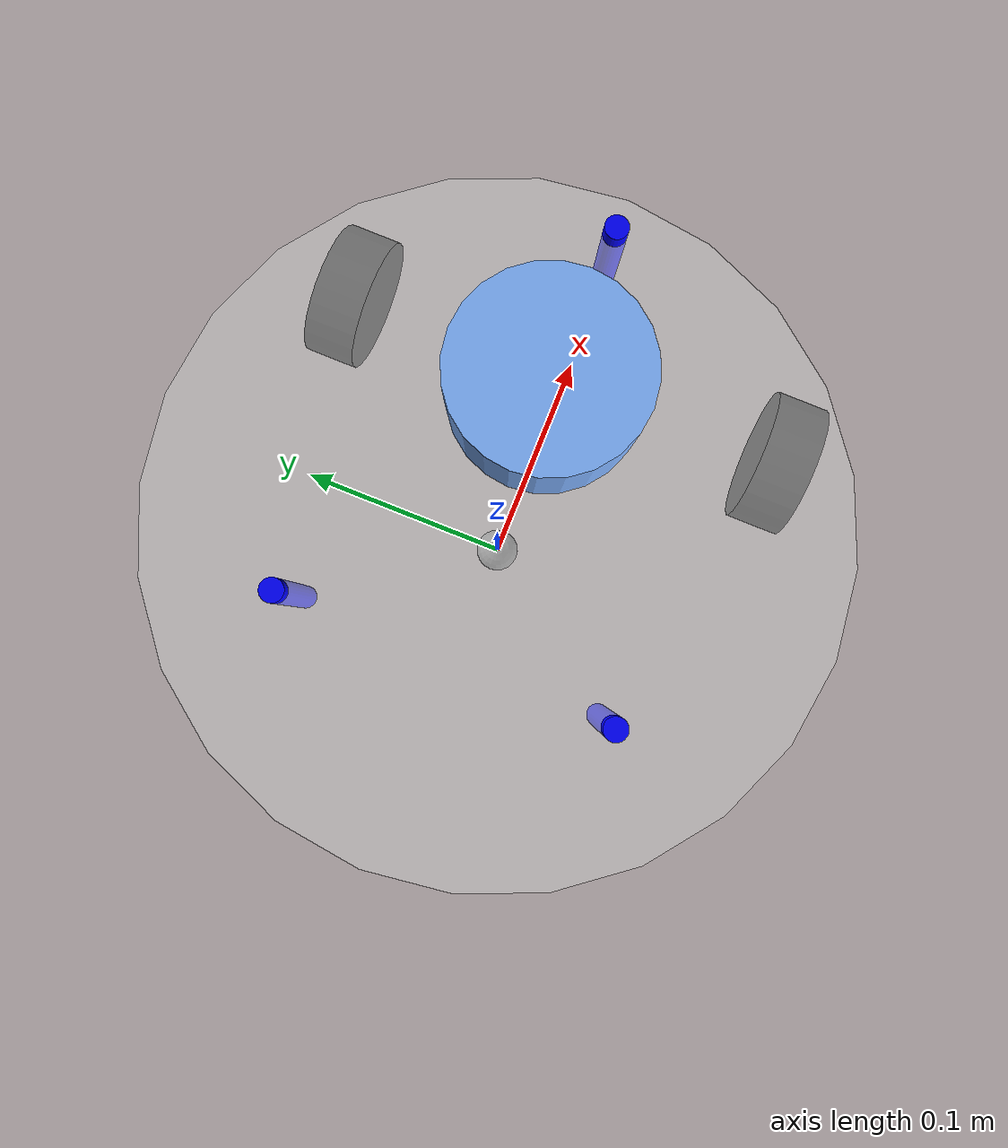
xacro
<?xml version="1.0"?>
<robot xmlns:xacro="http://www.ros.org/wiki/xacro" name="vibe_robot">

  <!-- Parameters for easy customization -->
  <xacro:property name="plate_diameter" value="0.280"/>  <!-- 280mm -->
  <xacro:property name="plate_thickness" value="0.003"/>  <!-- 3mm acrylic -->
  <xacro:property name="plate_radius" value="${plate_diameter/2}"/>

  <xacro:property name="bottom_plate_height" value="0.065"/>  <!-- 65mm from base_footprint -->
  <xacro:property name="top_plate_height" value="0.125"/>  <!-- 125mm from base_footprint -->

  <xacro:property name="base_link_x" value="0.085"/>  <!-- 85mm -->
  <xacro:property name="base_link_y" value="0.0"/>
  <xacro:property name="base_link_z" value="0.065"/>  <!-- 65mm -->

  <xacro:property name="support_post_radius" value="0.005"/>  <!-- 5mm radius -->
  <xacro:property name="support_post_bottom" value="0.055"/>  <!-- 10mm below bottom plate -->
  <xacro:property name="support_post_top" value="0.135"/>  <!-- 10mm above top plate -->
  <xacro:property name="support_post_height" value="${support_post_top - support_post_bottom}"/>

  <xacro:property name="wheel_radius" value="0.03125"/>  <!-- 62.5mm diameter / 2 -->
  <xacro:property name="wheel_width" value="0.024"/>  <!-- 24mm -->
  <xacro:property name="wheel_separation" value="0.215"/>  <!-- 215mm wheelbase -->

  <!-- Colors -->
  <material name="clear_acrylic">
    <color rgba="0.9 0.9 0.9 0.5"/>
  </material>

  <material name="blue">
    <color rgba="0.0 0.0 1.0 1.0"/>
  </material>

  <material name="light_blue">
    <color rgba="0.5 0.7 1.0 1.0"/>
  </material>

  <material name="grey">
    <color rgba="0.5 0.5 0.5 1.0"/>
  </material>

  <material name="red">
    <color rgba="1.0 0.0 0.0 1.0"/>
  </material>

  <material name="black">
    <color rgba="0.1 0.1 0.1 1.0"/>
  </material>

  <!-- Base footprint (ground projection) -->
  <link name="base_footprint">
    <visual>
      <geometry>
        <sphere radius="0.01"/>  <!-- 1cm sphere -->
      </geometry>
      <material name="grey"/>
    </visual>
  </link>

  <!-- Base link (main robot body, rotation center) -->
  <link name="base_link">
    <visual>
      <geometry>
        <box size="0.05 0.05 0.05"/>
      </geometry>
      <material name="grey"/>
    </visual>
    <collision>
      <geometry>
        <box size="0.05 0.05 0.05"/>
      </geometry>
    </collision>
    <inertial>
      <mass value="1.0"/>
      <inertia ixx="0.001" ixy="0.0" ixz="0.0" iyy="0.001" iyz="0.0" izz="0.001"/>
    </inertial>
  </link>

  <joint name="base_footprint_to_base_link" type="fixed">
    <parent link="base_footprint"/>
    <child link="base_link"/>
    <origin xyz="${base_link_x} ${base_link_y} ${base_link_z}" rpy="0 0 0"/>
  </joint>

  <!-- Bottom plate (clear acrylic) -->
  <link name="bottom_plate">
    <visual>
      <geometry>
        <cylinder radius="${plate_radius}" length="${plate_thickness}"/>
      </geometry>
      <material name="clear_acrylic"/>
    </visual>
    <collision>
      <geometry>
        <cylinder radius="${plate_radius}" length="${plate_thickness}"/>
      </geometry>
    </collision>
    <inertial>
      <mass value="0.5"/>
      <inertia ixx="0.005" ixy="0.0" ixz="0.0" iyy="0.005" iyz="0.0" izz="0.01"/>
    </inertial>
  </link>

  <joint name="base_footprint_to_bottom_plate" type="fixed">
    <parent link="base_footprint"/>
    <child link="bottom_plate"/>
    <origin xyz="0 0 ${bottom_plate_height}" rpy="0 0 0"/>
  </joint>

  <!-- Top plate (clear acrylic) -->
  <link name="top_plate">
    <visual>
      <geometry>
        <cylinder radius="${plate_radius}" length="${plate_thickness}"/>
      </geometry>
      <material name="clear_acrylic"/>
    </visual>
    <collision>
      <geometry>
        <cylinder radius="${plate_radius}" length="${plate_thickness}"/>
      </geometry>
    </collision>
    <inertial>
      <mass value="0.5"/>
      <inertia ixx="0.005" ixy="0.0" ixz="0.0" iyy="0.005" iyz="0.0" izz="0.01"/>
    </inertial>
  </link>

  <joint name="base_footprint_to_top_plate" type="fixed">
    <parent link="base_footprint"/>
    <child link="top_plate"/>
    <origin xyz="0 0 ${top_plate_height}" rpy="0 0 0"/>
  </joint>

  <!-- Support Post 1 (blue) -->
  <link name="support_post_1">
    <visual>
      <geometry>
        <cylinder radius="${support_post_radius}" length="${support_post_height}"/>
      </geometry>
      <material name="blue"/>
    </visual>
    <collision>
      <geometry>
        <cylinder radius="${support_post_radius}" length="${support_post_height}"/>
      </geometry>
    </collision>
    <inertial>
      <mass value="0.05"/>
      <inertia ixx="0.0001" ixy="0.0" ixz="0.0" iyy="0.0001" iyz="0.0" izz="0.00001"/>
    </inertial>
  </link>

  <joint name="base_link_to_support_post_1" type="fixed">
    <parent link="base_link"/>
    <child link="support_post_1"/>
    <origin xyz="0.040 0 ${(support_post_bottom + support_post_top)/2 - base_link_z}" rpy="0 0 0"/>
  </joint>

  <!-- Support Post 2 (blue) -->
  <link name="support_post_2">
    <visual>
      <geometry>
        <cylinder radius="${support_post_radius}" length="${support_post_height}"/>
      </geometry>
      <material name="blue"/>
    </visual>
    <collision>
      <geometry>
        <cylinder radius="${support_post_radius}" length="${support_post_height}"/>
      </geometry>
    </collision>
    <inertial>
      <mass value="0.05"/>
      <inertia ixx="0.0001" ixy="0.0" ixz="0.0" iyy="0.0001" iyz="0.0" izz="0.00001"/>
    </inertial>
  </link>

  <joint name="support_post_1_to_support_post_2" type="fixed">
    <parent link="support_post_1"/>
    <child link="support_post_2"/>
    <origin xyz="-0.180 0.070 0" rpy="0 0 0"/>
  </joint>

  <!-- Support Post 3 (blue) -->
  <link name="support_post_3">
    <visual>
      <geometry>
        <cylinder radius="${support_post_radius}" length="${support_post_height}"/>
      </geometry>
      <material name="blue"/>
    </visual>
    <collision>
      <geometry>
        <cylinder radius="${support_post_radius}" length="${support_post_height}"/>
      </geometry>
    </collision>
    <inertial>
      <mass value="0.05"/>
      <inertia ixx="0.0001" ixy="0.0" ixz="0.0" iyy="0.0001" iyz="0.0" izz="0.00001"/>
    </inertial>
  </link>

  <joint name="support_post_1_to_support_post_3" type="fixed">
    <parent link="support_post_1"/>
    <child link="support_post_3"/>
    <origin xyz="-0.180 -0.070 0" rpy="0 0 0"/>
  </joint>

  <!-- Left Wheel -->
  <link name="left_wheel">
    <visual>
      <geometry>
        <cylinder radius="${wheel_radius}" length="${wheel_width}"/>
      </geometry>
      <origin xyz="0 0 0" rpy="${pi/2} 0 0"/>
      <material name="black"/>
    </visual>
    <collision>
      <geometry>
        <cylinder radius="${wheel_radius}" length="${wheel_width}"/>
      </geometry>
      <origin xyz="0 0 0" rpy="${pi/2} 0 0"/>
    </collision>
    <inertial>
      <mass value="0.2"/>
      <origin xyz="0 0 0" rpy="${pi/2} 0 0"/>
      <inertia ixx="0.0001" ixy="0.0" ixz="0.0" iyy="0.0001" iyz="0.0" izz="0.0001"/>
    </inertial>
  </link>

  <joint name="left_wheel_joint" type="continuous">
    <parent link="base_link"/>
    <child link="left_wheel"/>
    <origin xyz="0 ${wheel_separation/2} ${wheel_radius - base_link_z}" rpy="0 0 0"/>
    <axis xyz="0 1 0"/>
  </joint>

  <!-- Right Wheel -->
  <link name="right_wheel">
    <visual>
      <geometry>
        <cylinder radius="${wheel_radius}" length="${wheel_width}"/>
      </geometry>
      <origin xyz="0 0 0" rpy="${pi/2} 0 0"/>
      <material name="black"/>
    </visual>
    <collision>
      <geometry>
        <cylinder radius="${wheel_radius}" length="${wheel_width}"/>
      </geometry>
      <origin xyz="0 0 0" rpy="${pi/2} 0 0"/>
    </collision>
    <inertial>
      <mass value="0.2"/>
      <origin xyz="0 0 0" rpy="${pi/2} 0 0"/>
      <inertia ixx="0.0001" ixy="0.0" ixz="0.0" iyy="0.0001" iyz="0.0" izz="0.0001"/>
    </inertial>
  </link>

  <joint name="right_wheel_joint" type="continuous">
    <parent link="base_link"/>
    <child link="right_wheel"/>
    <origin xyz="0 ${-wheel_separation/2} ${wheel_radius - base_link_z}" rpy="0 0 0"/>
    <axis xyz="0 1 0"/>
  </joint>

  <!-- Lidar (light blue) -->
  <link name="lidar">
    <visual>
      <geometry>
        <cylinder radius="0.035" length="0.04"/>
      </geometry>
      <material name="light_blue"/>
    </visual>
    <collision>
      <geometry>
        <cylinder radius="0.035" length="0.04"/>
      </geometry>
    </collision>
    <inertial>
      <mass value="0.15"/>
      <inertia ixx="0.0001" ixy="0.0" ixz="0.0" iyy="0.0001" iyz="0.0" izz="0.0001"/>
    </inertial>
  </link>

  <joint name="base_link_to_lidar" type="fixed">
    <parent link="base_link"/>
    <child link="lidar"/>
    <origin xyz="-0.040 0 0.130" rpy="0 0 0"/>
  </joint>

  <!-- IMU (grey) -->
  <link name="imu">
    <visual>
      <geometry>
        <box size="0.03 0.03 0.01"/>
      </geometry>
      <material name="grey"/>
    </visual>
    <collision>
      <geometry>
        <box size="0.03 0.03 0.01"/>
      </geometry>
    </collision>
    <inertial>
      <mass value="0.02"/>
      <inertia ixx="0.00001" ixy="0.0" ixz="0.0" iyy="0.00001" iyz="0.0" izz="0.00001"/>
    </inertial>
  </link>

  <joint name="base_link_to_imu" type="fixed">
    <parent link="base_link"/>
    <child link="imu"/>
    <origin xyz="-0.040 0 0.020" rpy="0 0 0"/>
  </joint>

  <!-- Front Marker (red) -->
  <link name="front_marker">
    <visual>
      <geometry>
        <sphere radius="0.01"/>
      </geometry>
      <material name="red"/>
    </visual>
    <collision>
      <geometry>
        <sphere radius="0.01"/>
      </geometry>
    </collision>
    <inertial>
      <mass value="0.01"/>
      <inertia ixx="0.00001" ixy="0.0" ixz="0.0" iyy="0.00001" iyz="0.0" izz="0.00001"/>
    </inertial>
  </link>

  <joint name="base_link_to_front_marker" type="fixed">
    <parent link="base_link"/>
    <child link="front_marker"/>
    <origin xyz="0.015 0 0.050" rpy="0 0 0"/>
  </joint>

</robot>
